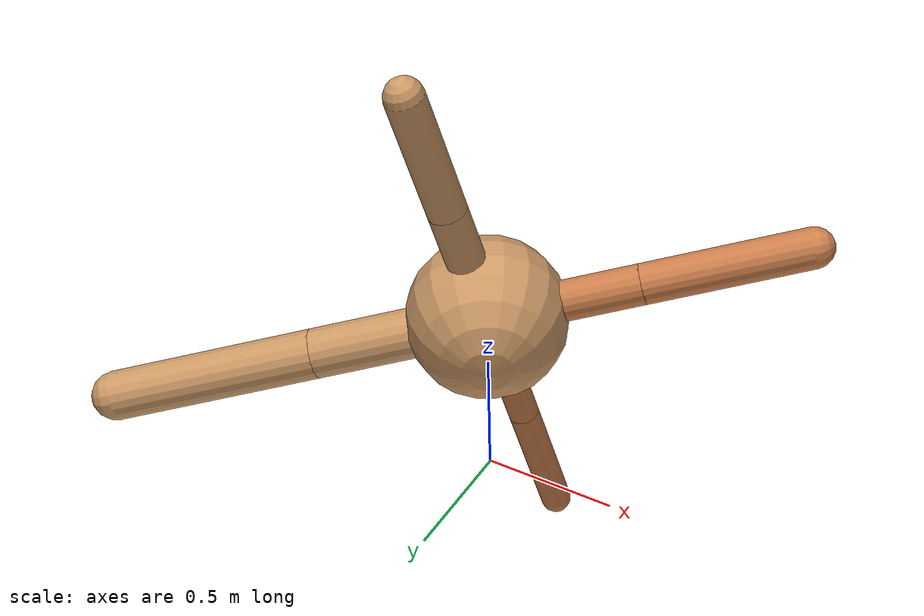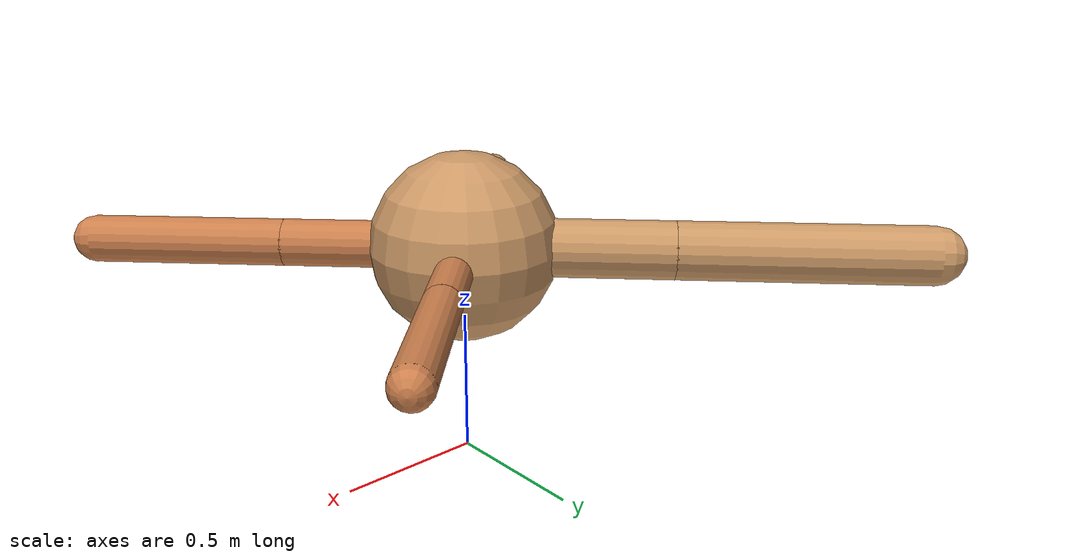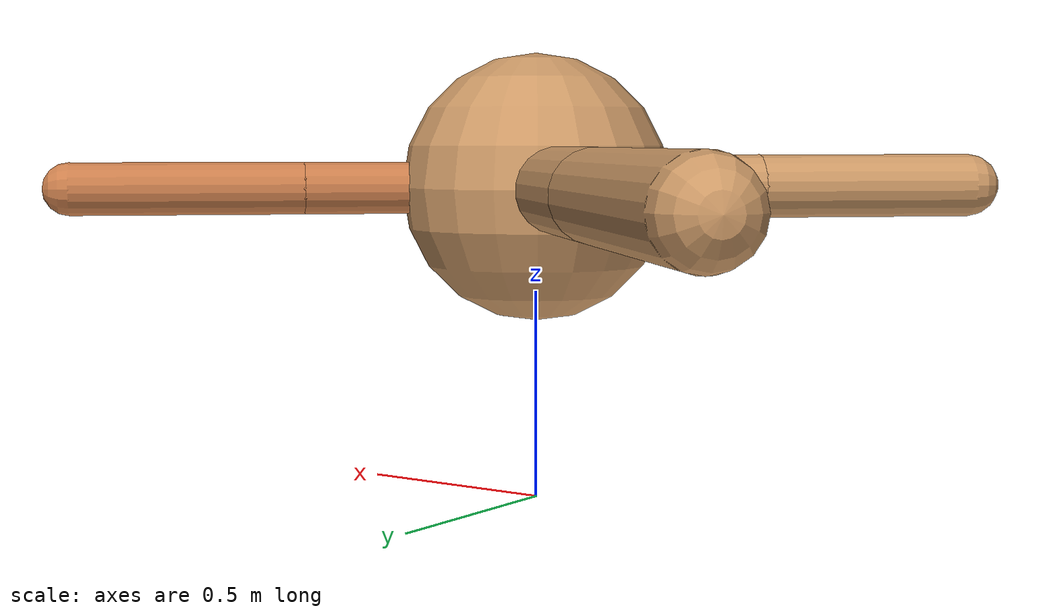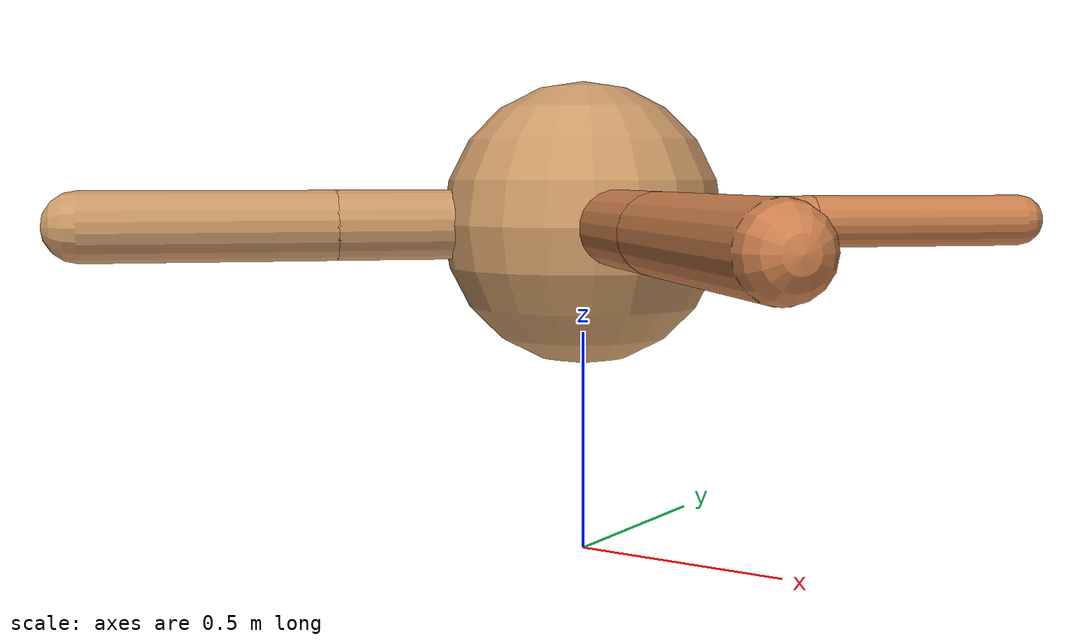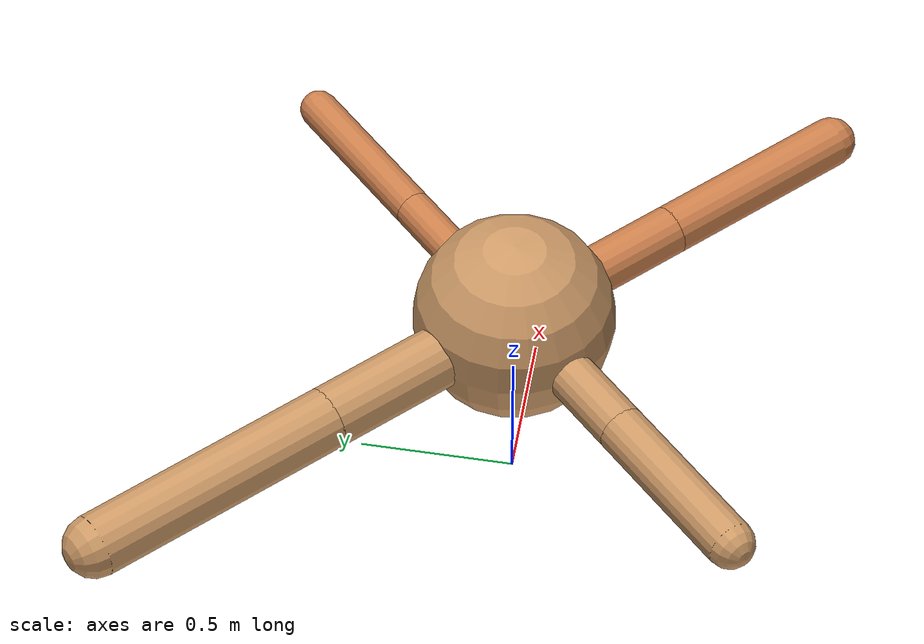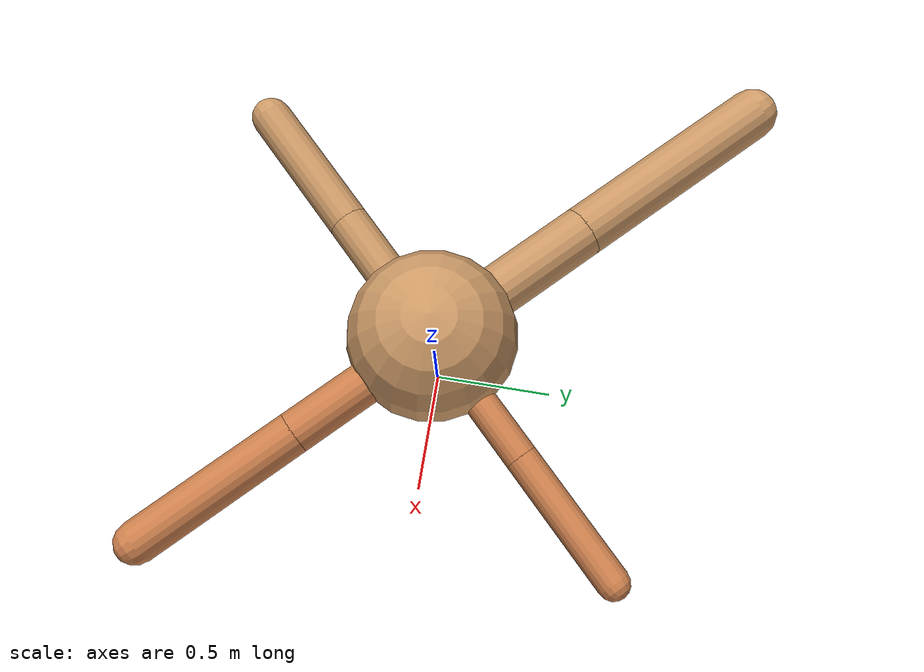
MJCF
<?xml version="1.0" ?>
<mujoco model="ant">

	<compiler angle="degree" coordinate="local" inertiafromgeom="true"/>

	<option integrator="RK4" timestep="0.01"/>

	<custom>

		<numeric data="0.0 0.0 0.55 1.0 0.0 0.0 0.0 0.0 1.0 0.0 -1.0 0.0 -1.0 0.0 1.0" name="init_qpos"/>

	</custom>

	<default>

		<joint armature="1" damping="1" limited="true"/>

		<geom conaffinity="0" condim="3" density="5.0" friction="1.5 0.1 0.1" margin="0.01" rgba="0.8 0.6 0.4 1"/>

	</default>

	<worldbody>

		<body name="torso" pos="0 0 0.75">

			<geom name="torso_geom" pos="0 0 0" size="0.3188324936116094" type="sphere"/>

			<!--joint armature="0" damping="0" limited="false" margin="0.01" name="root" pos="0 0 0" type="free"/-->

			<body name="front_left_leg" pos="0 0 0">

				<geom fromto="0 0 0 0.2 0.2 0" name="aux_1_geom" size="0.061345911864869276" type="capsule" rgba=".8 .5 .3 1"/>

				<body name="aux_1" pos="0.2 0.2 0">

					<joint axis="0 0 1" name="hip_1" pos="0.0 0.0 0.0" range="-40 40" type="hinge"/>

					<geom fromto="0 0 0 0.18850468088388672 0.18850468088388672 0" name="left_leg_geom" size="0.061345911864869276" type="capsule" rgba=".8 .5 .3 1"/>

					<body pos="0.18850468088388672 0.18850468088388672 0" name="front_left_foot">

						<joint axis="-1 1 0" name="ankle_1" pos="0.0 0.0 0.0" range="30 100" type="hinge"/>

						<geom fromto="0 0 0 0.37700936176777344 0.37700936176777344 0" name="left_ankle_geom" size="0.061345911864869276" type="capsule" rgba=".8 .5 .3 1"/>

					</body>

				</body>

			</body>

			<body name="front_right_leg" pos="0 0 0">

				<geom fromto="0 0 0 -0.2 0.2 0" name="aux_2_geom" size="0.0991199151515958" type="capsule"/>

				<body name="aux_2" pos="-0.2 0.2 0">

					<joint axis="0 0 1" name="hip_2" pos="0.0 0.0 0.0" range="-40 40" type="hinge"/>

					<geom fromto="0 0 0 -0.2956719194960505 0.2956719194960505 0" name="right_leg_geom" size="0.0991199151515958" type="capsule"/>

					<body pos="-0.2956719194960505 0.2956719194960505 0" name="front_right_foot">

						<joint axis="1 1 0" name="ankle_2" pos="0.0 0.0 0.0" range="-100 -30" type="hinge"/>

						<geom fromto="0 0 0 -0.591343838992101 0.591343838992101 0" name="right_ankle_geom" size="0.0991199151515958" type="capsule"/>

					</body>

				</body>

			</body>

			<body name="left_back_leg" pos="0 0 0">

				<geom fromto="0 0 0 -0.2 -0.2 0" name="aux_3_geom" size="0.07754125210780742" type="capsule"/>

				<body name="aux_3" pos="-0.2 -0.2 0">

					<joint axis="0 0 1" name="hip_3" pos="0.0 0.0 0.0" range="-40 40" type="hinge"/>

					<geom fromto="0 0 0 -0.19045383665553875 -0.19045383665553875 0" name="back_leg_geom" size="0.07754125210780742" type="capsule"/>

					<body pos="-0.19045383665553875 -0.19045383665553875 0" name="left_back_foot">

						<joint axis="-1 1 0" name="ankle_3" pos="0.0 0.0 0.0" range="-100 -30" type="hinge"/>

						<geom fromto="0 0 0 -0.3809076733110775 -0.3809076733110775 0" name="third_ankle_geom" size="0.07754125210780742" type="capsule"/>

					</body>

				</body>

			</body>

			<body name="right_back_leg" pos="0 0 0">

				<geom fromto="0 0 0 0.2 -0.2 0" name="aux_4_geom" size="0.08011333604814072" type="capsule" rgba=".8 .5 .3 1"/>

				<body name="aux_4" pos="0.2 -0.2 0">

					<joint axis="0 0 1" name="hip_4" pos="0.0 0.0 0.0" range="-40 40" type="hinge"/>

					<geom fromto="0 0 0 0.2311117800145766 -0.2311117800145766 0" name="rightback_leg_geom" size="0.08011333604814072" type="capsule" rgba=".8 .5 .3 1"/>

					<body pos="0.2311117800145766 -0.2311117800145766 0" name="right_back_foot">

						<joint axis="1 1 0" name="ankle_4" pos="0.0 0.0 0.0" range="30 100" type="hinge"/>

						<geom fromto="0 0 0 0.4622235600291532 -0.4622235600291532 0" name="fourth_ankle_geom" size="0.08011333604814072" type="capsule" rgba=".8 .5 .3 1"/>

					</body>

				</body>

			</body>

		</body>

	</worldbody>

	<actuator>

		<motor ctrllimited="true" ctrlrange="-1.0 1.0" joint="hip_4" gear="150"/>

		<motor ctrllimited="true" ctrlrange="-1.0 1.0" joint="ankle_4" gear="150"/>

		<motor ctrllimited="true" ctrlrange="-1.0 1.0" joint="hip_1" gear="150"/>

		<motor ctrllimited="true" ctrlrange="-1.0 1.0" joint="ankle_1" gear="150"/>

		<motor ctrllimited="true" ctrlrange="-1.0 1.0" joint="hip_2" gear="150"/>

		<motor ctrllimited="true" ctrlrange="-1.0 1.0" joint="ankle_2" gear="150"/>

		<motor ctrllimited="true" ctrlrange="-1.0 1.0" joint="hip_3" gear="150"/>

		<motor ctrllimited="true" ctrlrange="-1.0 1.0" joint="ankle_3" gear="150"/>

	</actuator>

</mujoco>
